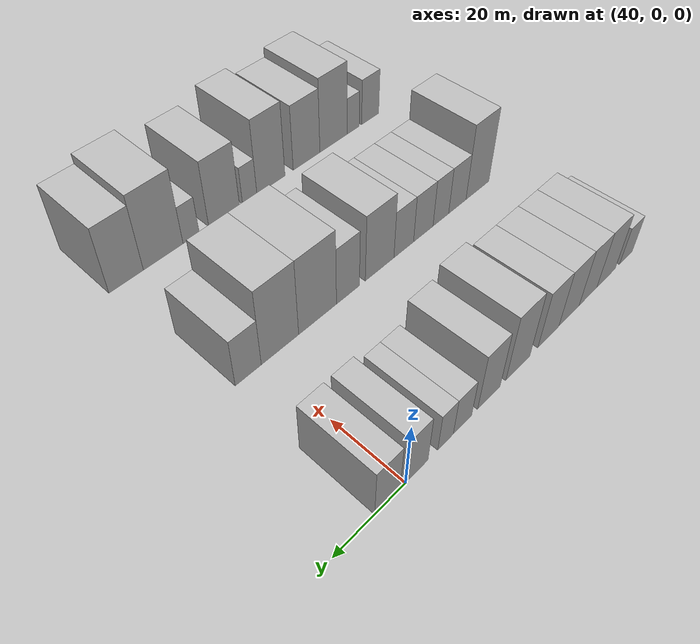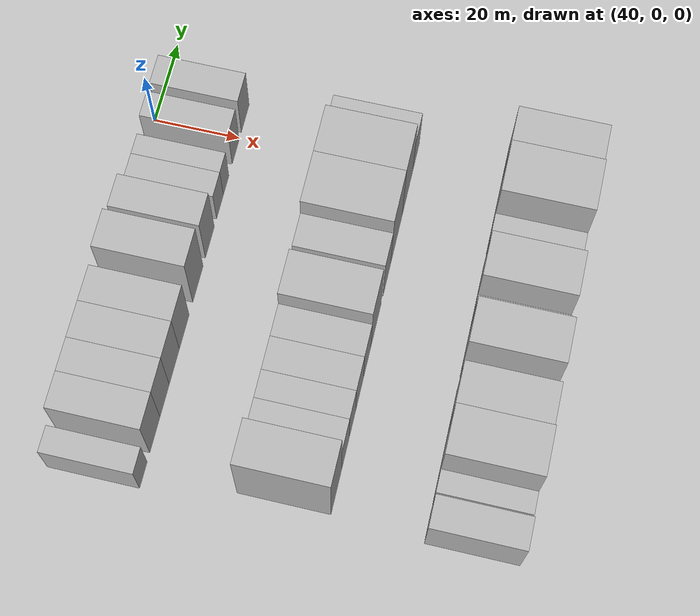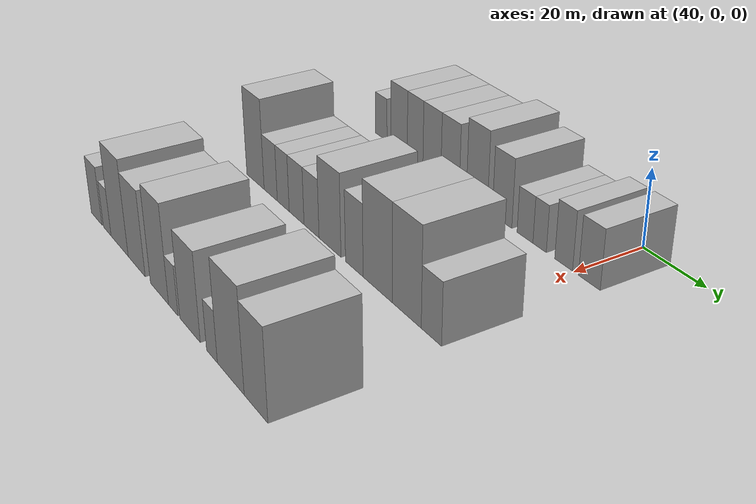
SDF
<sdf version="1.6">
 <world name="default">
  <model name="building_30">
   <static>1</static>
   <pose>50.0000 -80.1700 0 0.000000 0.000000 0.000000</pose>
   <link name="link">
    <pose>0 0 6.00 0 0 0</pose>
    <collision name="collision"><geometry><box><size>20.0000 5.7939 12.0000</size></box></geometry></collision>
    <visual name="visual">
     <cast_shadows>0</cast_shadows>
     <geometry><box><size>20.0000 5.7939 12.0000</size></box></geometry>
     <material>
      <script>
       <uri>model://HANNAS_wall/materials/scripts</uri>
       <uri>model://HANNAS_wall/materials/textures</uri>
       <name>vrc/HANNAS_wall</name>
      </script>
     </material>
    </visual>
   </link>
  </model>
  <model name="building_31">
   <static>1</static>
   <pose>50.0000 -71.2959 0 0.000000 0.000000 0.000000</pose>
   <link name="link">
    <pose>0 0 9.00 0 0 0</pose>
    <collision name="collision"><geometry><box><size>20.0000 7.9543 18.0000</size></box></geometry></collision>
    <visual name="visual">
     <cast_shadows>0</cast_shadows>
     <geometry><box><size>20.0000 7.9543 18.0000</size></box></geometry>
     <material>
      <script>
       <uri>model://HANNAS_wall/materials/scripts</uri>
       <uri>model://HANNAS_wall/materials/textures</uri>
       <name>vrc/HANNAS_wall</name>
      </script>
     </material>
    </visual>
   </link>
  </model>
  <model name="building_32">
   <static>1</static>
   <pose>50.0000 -63.6211 0 0.000000 0.000000 0.000000</pose>
   <link name="link">
    <pose>0 0 9.00 0 0 0</pose>
    <collision name="collision"><geometry><box><size>20.0000 7.3951 18.0000</size></box></geometry></collision>
    <visual name="visual">
     <cast_shadows>0</cast_shadows>
     <geometry><box><size>20.0000 7.3951 18.0000</size></box></geometry>
     <material>
      <script>
       <uri>model://HANNAS_wall/materials/scripts</uri>
       <uri>model://HANNAS_wall/materials/textures</uri>
       <name>vrc/HANNAS_wall</name>
      </script>
     </material>
    </visual>
   </link>
  </model>
  <model name="building_33">
   <static>1</static>
   <pose>50.0000 -55.8472 0 0.000000 0.000000 0.000000</pose>
   <link name="link">
    <pose>0 0 9.00 0 0 0</pose>
    <collision name="collision"><geometry><box><size>20.0000 8.1526 18.0000</size></box></geometry></collision>
    <visual name="visual">
     <cast_shadows>0</cast_shadows>
     <geometry><box><size>20.0000 8.1526 18.0000</size></box></geometry>
     <material>
      <script>
       <uri>model://HANNAS_wall/materials/scripts</uri>
       <uri>model://HANNAS_wall/materials/textures</uri>
       <name>vrc/HANNAS_wall</name>
      </script>
     </material>
    </visual>
   </link>
  </model>
  <model name="building_34">
   <static>1</static>
   <pose>50.0000 -47.7403 0 0.000000 0.000000 0.000000</pose>
   <link name="link">
    <pose>0 0 9.00 0 0 0</pose>
    <collision name="collision"><geometry><box><size>20.0000 8.0612 18.0000</size></box></geometry></collision>
    <visual name="visual">
     <cast_shadows>0</cast_shadows>
     <geometry><box><size>20.0000 8.0612 18.0000</size></box></geometry>
     <material>
      <script>
       <uri>model://HANNAS_wall/materials/scripts</uri>
       <uri>model://HANNAS_wall/materials/textures</uri>
       <name>vrc/HANNAS_wall</name>
      </script>
     </material>
    </visual>
   </link>
  </model>
  <model name="building_35">
   <static>1</static>
   <pose>50.0000 -36.3752 0 0.000000 0.000000 0.000000</pose>
   <link name="link">
    <pose>0 0 10.50 0 0 0</pose>
    <collision name="collision"><geometry><box><size>20.0000 8.6689 21.0000</size></box></geometry></collision>
    <visual name="visual">
     <cast_shadows>0</cast_shadows>
     <geometry><box><size>20.0000 8.6689 21.0000</size></box></geometry>
     <material>
      <script>
       <uri>model://HANNAS_wall/materials/scripts</uri>
       <uri>model://HANNAS_wall/materials/textures</uri>
       <name>vrc/HANNAS_wall</name>
      </script>
     </material>
    </visual>
   </link>
  </model>
  <model name="building_36">
   <static>1</static>
   <pose>50.0000 -26.2224 0 0.000000 0.000000 0.000000</pose>
   <link name="link">
    <pose>0 0 9.00 0 0 0</pose>
    <collision name="collision"><geometry><box><size>20.0000 7.6368 18.0000</size></box></geometry></collision>
    <visual name="visual">
     <cast_shadows>0</cast_shadows>
     <geometry><box><size>20.0000 7.6368 18.0000</size></box></geometry>
     <material>
      <script>
       <uri>model://HANNAS_wall/materials/scripts</uri>
       <uri>model://HANNAS_wall/materials/textures</uri>
       <name>vrc/HANNAS_wall</name>
      </script>
     </material>
    </visual>
   </link>
  </model>
  <model name="building_37">
   <static>1</static>
   <pose>50.0000 -17.4425 0 0.000000 0.000000 0.000000</pose>
   <link name="link">
    <pose>0 0 6.00 0 0 0</pose>
    <collision name="collision"><geometry><box><size>20.0000 5.9229 12.0000</size></box></geometry></collision>
    <visual name="visual">
     <cast_shadows>0</cast_shadows>
     <geometry><box><size>20.0000 5.9229 12.0000</size></box></geometry>
     <material>
      <script>
       <uri>model://HANNAS_wall/materials/scripts</uri>
       <uri>model://HANNAS_wall/materials/textures</uri>
       <name>vrc/HANNAS_wall</name>
      </script>
     </material>
    </visual>
   </link>
  </model>
  <model name="building_38">
   <static>1</static>
   <pose>50.0000 -12.0507 0 0.000000 0.000000 0.000000</pose>
   <link name="link">
    <pose>0 0 6.00 0 0 0</pose>
    <collision name="collision"><geometry><box><size>20.0000 4.8607 12.0000</size></box></geometry></collision>
    <visual name="visual">
     <cast_shadows>0</cast_shadows>
     <geometry><box><size>20.0000 4.8607 12.0000</size></box></geometry>
     <material>
      <script>
       <uri>model://HANNAS_wall/materials/scripts</uri>
       <uri>model://HANNAS_wall/materials/textures</uri>
       <name>vrc/HANNAS_wall</name>
      </script>
     </material>
    </visual>
   </link>
  </model>
  <model name="building_39">
   <static>1</static>
   <pose>50.0000 -3.5310 0 0.000000 0.000000 0.000000</pose>
   <link name="link">
    <pose>0 0 7.50 0 0 0</pose>
    <collision name="collision"><geometry><box><size>20.0000 6.1787 15.0000</size></box></geometry></collision>
    <visual name="visual">
     <cast_shadows>0</cast_shadows>
     <geometry><box><size>20.0000 6.1787 15.0000</size></box></geometry>
     <material>
      <script>
       <uri>model://HANNAS_wall/materials/scripts</uri>
       <uri>model://HANNAS_wall/materials/textures</uri>
       <name>vrc/HANNAS_wall</name>
      </script>
     </material>
    </visual>
   </link>
  </model>
  <model name="building_40">
   <static>1</static>
   <pose>50.0000 5.1485 0 0.000000 0.000000 0.000000</pose>
   <link name="link">
    <pose>0 0 7.50 0 0 0</pose>
    <collision name="collision"><geometry><box><size>20.0000 7.1804 15.0000</size></box></geometry></collision>
    <visual name="visual">
     <cast_shadows>0</cast_shadows>
     <geometry><box><size>20.0000 7.1804 15.0000</size></box></geometry>
     <material>
      <script>
       <uri>model://HANNAS_wall/materials/scripts</uri>
       <uri>model://HANNAS_wall/materials/textures</uri>
       <name>vrc/HANNAS_wall</name>
      </script>
     </material>
    </visual>
   </link>
  </model>
  <model name="building_115">
   <static>1</static>
   <pose>90.0000 -74.5567 0 0.000000 0.000000 0.000000</pose>
   <link name="link">
    <pose>0 0 12.00 0 0 0</pose>
    <collision name="collision"><geometry><box><size>20.0000 9.6104 24.0000</size></box></geometry></collision>
    <visual name="visual">
     <cast_shadows>0</cast_shadows>
     <geometry><box><size>20.0000 9.6104 24.0000</size></box></geometry>
     <material>
      <script>
       <uri>model://HANNAS_wall/materials/scripts</uri>
       <uri>model://HANNAS_wall/materials/textures</uri>
       <name>vrc/HANNAS_wall</name>
      </script>
     </material>
    </visual>
   </link>
  </model>
  <model name="building_116">
   <static>1</static>
   <pose>90.0000 -66.2463 0 0.000000 0.000000 0.000000</pose>
   <link name="link">
    <pose>0 0 7.50 0 0 0</pose>
    <collision name="collision"><geometry><box><size>20.0000 7.0105 15.0000</size></box></geometry></collision>
    <visual name="visual">
     <cast_shadows>0</cast_shadows>
     <geometry><box><size>20.0000 7.0105 15.0000</size></box></geometry>
     <material>
      <script>
       <uri>model://HANNAS_wall/materials/scripts</uri>
       <uri>model://HANNAS_wall/materials/textures</uri>
       <name>vrc/HANNAS_wall</name>
      </script>
     </material>
    </visual>
   </link>
  </model>
  <model name="building_117">
   <static>1</static>
   <pose>90.0000 -59.6669 0 0.000000 0.000000 0.000000</pose>
   <link name="link">
    <pose>0 0 7.50 0 0 0</pose>
    <collision name="collision"><geometry><box><size>20.0000 6.1483 15.0000</size></box></geometry></collision>
    <visual name="visual">
     <cast_shadows>0</cast_shadows>
     <geometry><box><size>20.0000 6.1483 15.0000</size></box></geometry>
     <material>
      <script>
       <uri>model://HANNAS_wall/materials/scripts</uri>
       <uri>model://HANNAS_wall/materials/textures</uri>
       <name>vrc/HANNAS_wall</name>
      </script>
     </material>
    </visual>
   </link>
  </model>
  <model name="building_118">
   <static>1</static>
   <pose>90.0000 -52.8986 0 0.000000 0.000000 0.000000</pose>
   <link name="link">
    <pose>0 0 7.50 0 0 0</pose>
    <collision name="collision"><geometry><box><size>20.0000 7.3882 15.0000</size></box></geometry></collision>
    <visual name="visual">
     <cast_shadows>0</cast_shadows>
     <geometry><box><size>20.0000 7.3882 15.0000</size></box></geometry>
     <material>
      <script>
       <uri>model://HANNAS_wall/materials/scripts</uri>
       <uri>model://HANNAS_wall/materials/textures</uri>
       <name>vrc/HANNAS_wall</name>
      </script>
     </material>
    </visual>
   </link>
  </model>
  <model name="building_119">
   <static>1</static>
   <pose>90.0000 -45.6013 0 0.000000 0.000000 0.000000</pose>
   <link name="link">
    <pose>0 0 7.50 0 0 0</pose>
    <collision name="collision"><geometry><box><size>20.0000 7.2063 15.0000</size></box></geometry></collision>
    <visual name="visual">
     <cast_shadows>0</cast_shadows>
     <geometry><box><size>20.0000 7.2063 15.0000</size></box></geometry>
     <material>
      <script>
       <uri>model://HANNAS_wall/materials/scripts</uri>
       <uri>model://HANNAS_wall/materials/textures</uri>
       <name>vrc/HANNAS_wall</name>
      </script>
     </material>
    </visual>
   </link>
  </model>
  <model name="building_120">
   <static>1</static>
   <pose>90.0000 -36.9775 0 0.000000 0.000000 0.000000</pose>
   <link name="link">
    <pose>0 0 10.50 0 0 0</pose>
    <collision name="collision"><geometry><box><size>20.0000 10.0412 21.0000</size></box></geometry></collision>
    <visual name="visual">
     <cast_shadows>0</cast_shadows>
     <geometry><box><size>20.0000 10.0412 21.0000</size></box></geometry>
     <material>
      <script>
       <uri>model://HANNAS_wall/materials/scripts</uri>
       <uri>model://HANNAS_wall/materials/textures</uri>
       <name>vrc/HANNAS_wall</name>
      </script>
     </material>
    </visual>
   </link>
  </model>
  <model name="building_121">
   <static>1</static>
   <pose>90.0000 -26.1524 0 0.000000 0.000000 0.000000</pose>
   <link name="link">
    <pose>0 0 9.00 0 0 0</pose>
    <collision name="collision"><geometry><box><size>20.0000 7.6090 18.0000</size></box></geometry></collision>
    <visual name="visual">
     <cast_shadows>0</cast_shadows>
     <geometry><box><size>20.0000 7.6090 18.0000</size></box></geometry>
     <material>
      <script>
       <uri>model://HANNAS_wall/materials/scripts</uri>
       <uri>model://HANNAS_wall/materials/textures</uri>
       <name>vrc/HANNAS_wall</name>
      </script>
     </material>
    </visual>
   </link>
  </model>
  <model name="building_122">
   <static>1</static>
   <pose>90.0000 -16.4000 0 0.000000 0.000000 0.000000</pose>
   <link name="link">
    <pose>0 0 12.00 0 0 0</pose>
    <collision name="collision"><geometry><box><size>20.0000 11.8959 24.0000</size></box></geometry></collision>
    <visual name="visual">
     <cast_shadows>0</cast_shadows>
     <geometry><box><size>20.0000 11.8959 24.0000</size></box></geometry>
     <material>
      <script>
       <uri>model://HANNAS_wall/materials/scripts</uri>
       <uri>model://HANNAS_wall/materials/textures</uri>
       <name>vrc/HANNAS_wall</name>
      </script>
     </material>
    </visual>
   </link>
  </model>
  <model name="building_123">
   <static>1</static>
   <pose>90.0000 -4.9255 0 0.000000 0.000000 0.000000</pose>
   <link name="link">
    <pose>0 0 12.00 0 0 0</pose>
    <collision name="collision"><geometry><box><size>20.0000 11.0531 24.0000</size></box></geometry></collision>
    <visual name="visual">
     <cast_shadows>0</cast_shadows>
     <geometry><box><size>20.0000 11.0531 24.0000</size></box></geometry>
     <material>
      <script>
       <uri>model://HANNAS_wall/materials/scripts</uri>
       <uri>model://HANNAS_wall/materials/textures</uri>
       <name>vrc/HANNAS_wall</name>
      </script>
     </material>
    </visual>
   </link>
  </model>
  <model name="building_124">
   <static>1</static>
   <pose>90.0000 4.2738 0 0.000000 0.000000 0.000000</pose>
   <link name="link">
    <pose>0 0 7.50 0 0 0</pose>
    <collision name="collision"><geometry><box><size>20.0000 7.3455 15.0000</size></box></geometry></collision>
    <visual name="visual">
     <cast_shadows>0</cast_shadows>
     <geometry><box><size>20.0000 7.3455 15.0000</size></box></geometry>
     <material>
      <script>
       <uri>model://HANNAS_wall/materials/scripts</uri>
       <uri>model://HANNAS_wall/materials/textures</uri>
       <name>vrc/HANNAS_wall</name>
      </script>
     </material>
    </visual>
   </link>
  </model>
  <model name="building_197">
   <static>1</static>
   <pose>130.0000 -77.2608 0 0.000000 0.000000 0.000000</pose>
   <link name="link">
    <pose>0 0 7.50 0 0 0</pose>
    <collision name="collision"><geometry><box><size>20.0000 7.0691 15.0000</size></box></geometry></collision>
    <visual name="visual">
     <cast_shadows>0</cast_shadows>
     <geometry><box><size>20.0000 7.0691 15.0000</size></box></geometry>
     <material>
      <script>
       <uri>model://HANNAS_wall/materials/scripts</uri>
       <uri>model://HANNAS_wall/materials/textures</uri>
       <name>vrc/HANNAS_wall</name>
      </script>
     </material>
    </visual>
   </link>
  </model>
  <model name="building_198">
   <static>1</static>
   <pose>130.0000 -70.2595 0 0.000000 0.000000 0.000000</pose>
   <link name="link">
    <pose>0 0 6.00 0 0 0</pose>
    <collision name="collision"><geometry><box><size>20.0000 4.9335 12.0000</size></box></geometry></collision>
    <visual name="visual">
     <cast_shadows>0</cast_shadows>
     <geometry><box><size>20.0000 4.9335 12.0000</size></box></geometry>
     <material>
      <script>
       <uri>model://HANNAS_wall/materials/scripts</uri>
       <uri>model://HANNAS_wall/materials/textures</uri>
       <name>vrc/HANNAS_wall</name>
      </script>
     </material>
    </visual>
   </link>
  </model>
  <model name="building_199">
   <static>1</static>
   <pose>130.0000 -62.4896 0 0.000000 0.000000 0.000000</pose>
   <link name="link">
    <pose>0 0 12.00 0 0 0</pose>
    <collision name="collision"><geometry><box><size>20.0000 10.6064 24.0000</size></box></geometry></collision>
    <visual name="visual">
     <cast_shadows>0</cast_shadows>
     <geometry><box><size>20.0000 10.6064 24.0000</size></box></geometry>
     <material>
      <script>
       <uri>model://HANNAS_wall/materials/scripts</uri>
       <uri>model://HANNAS_wall/materials/textures</uri>
       <name>vrc/HANNAS_wall</name>
      </script>
     </material>
    </visual>
   </link>
  </model>
  <model name="building_200">
   <static>1</static>
   <pose>130.0000 -52.1946 0 0.000000 0.000000 0.000000</pose>
   <link name="link">
    <pose>0 0 10.50 0 0 0</pose>
    <collision name="collision"><geometry><box><size>20.0000 9.9835 21.0000</size></box></geometry></collision>
    <visual name="visual">
     <cast_shadows>0</cast_shadows>
     <geometry><box><size>20.0000 9.9835 21.0000</size></box></geometry>
     <material>
      <script>
       <uri>model://HANNAS_wall/materials/scripts</uri>
       <uri>model://HANNAS_wall/materials/textures</uri>
       <name>vrc/HANNAS_wall</name>
      </script>
     </material>
    </visual>
   </link>
  </model>
  <model name="building_201">
   <static>1</static>
   <pose>130.0000 -39.2530 0 0.000000 0.000000 0.000000</pose>
   <link name="link">
    <pose>0 0 12.00 0 0 0</pose>
    <collision name="collision"><geometry><box><size>20.0000 9.8997 24.0000</size></box></geometry></collision>
    <visual name="visual">
     <cast_shadows>0</cast_shadows>
     <geometry><box><size>20.0000 9.8997 24.0000</size></box></geometry>
     <material>
      <script>
       <uri>model://HANNAS_wall/materials/scripts</uri>
       <uri>model://HANNAS_wall/materials/textures</uri>
       <name>vrc/HANNAS_wall</name>
      </script>
     </material>
    </visual>
   </link>
  </model>
  <model name="building_202">
   <static>1</static>
   <pose>130.0000 -31.8542 0 0.000000 0.000000 0.000000</pose>
   <link name="link">
    <pose>0 0 6.00 0 0 0</pose>
    <collision name="collision"><geometry><box><size>20.0000 4.8981 12.0000</size></box></geometry></collision>
    <visual name="visual">
     <cast_shadows>0</cast_shadows>
     <geometry><box><size>20.0000 4.8981 12.0000</size></box></geometry>
     <material>
      <script>
       <uri>model://HANNAS_wall/materials/scripts</uri>
       <uri>model://HANNAS_wall/materials/textures</uri>
       <name>vrc/HANNAS_wall</name>
      </script>
     </material>
    </visual>
   </link>
  </model>
  <model name="building_203">
   <static>1</static>
   <pose>130.0000 -23.3504 0 0.000000 0.000000 0.000000</pose>
   <link name="link">
    <pose>0 0 10.50 0 0 0</pose>
    <collision name="collision"><geometry><box><size>20.0000 10.1096 21.0000</size></box></geometry></collision>
    <visual name="visual">
     <cast_shadows>0</cast_shadows>
     <geometry><box><size>20.0000 10.1096 21.0000</size></box></geometry>
     <material>
      <script>
       <uri>model://HANNAS_wall/materials/scripts</uri>
       <uri>model://HANNAS_wall/materials/textures</uri>
       <name>vrc/HANNAS_wall</name>
      </script>
     </material>
    </visual>
   </link>
  </model>
  <model name="building_204">
   <static>1</static>
   <pose>130.0000 -12.7780 0 0.000000 0.000000 0.000000</pose>
   <link name="link">
    <pose>0 0 6.00 0 0 0</pose>
    <collision name="collision"><geometry><box><size>20.0000 5.0352 12.0000</size></box></geometry></collision>
    <visual name="visual">
     <cast_shadows>0</cast_shadows>
     <geometry><box><size>20.0000 5.0352 12.0000</size></box></geometry>
     <material>
      <script>
       <uri>model://HANNAS_wall/materials/scripts</uri>
       <uri>model://HANNAS_wall/materials/textures</uri>
       <name>vrc/HANNAS_wall</name>
      </script>
     </material>
    </visual>
   </link>
  </model>
  <model name="building_205">
   <static>1</static>
   <pose>130.0000 -4.3458 0 0.000000 0.000000 0.000000</pose>
   <link name="link">
    <pose>0 0 12.00 0 0 0</pose>
    <collision name="collision"><geometry><box><size>20.0000 11.8291 24.0000</size></box></geometry></collision>
    <visual name="visual">
     <cast_shadows>0</cast_shadows>
     <geometry><box><size>20.0000 11.8291 24.0000</size></box></geometry>
     <material>
      <script>
       <uri>model://HANNAS_wall/materials/scripts</uri>
       <uri>model://HANNAS_wall/materials/textures</uri>
       <name>vrc/HANNAS_wall</name>
      </script>
     </material>
    </visual>
   </link>
  </model>
  <model name="building_206">
   <static>1</static>
   <pose>130.0000 6.4489 0 0.000000 0.000000 0.000000</pose>
   <link name="link">
    <pose>0 0 10.50 0 0 0</pose>
    <collision name="collision"><geometry><box><size>20.0000 9.7604 21.0000</size></box></geometry></collision>
    <visual name="visual">
     <cast_shadows>0</cast_shadows>
     <geometry><box><size>20.0000 9.7604 21.0000</size></box></geometry>
     <material>
      <script>
       <uri>model://HANNAS_wall/materials/scripts</uri>
       <uri>model://HANNAS_wall/materials/textures</uri>
       <name>vrc/HANNAS_wall</name>
      </script>
     </material>
    </visual>
   </link>
  </model>
 </world>
</sdf>
